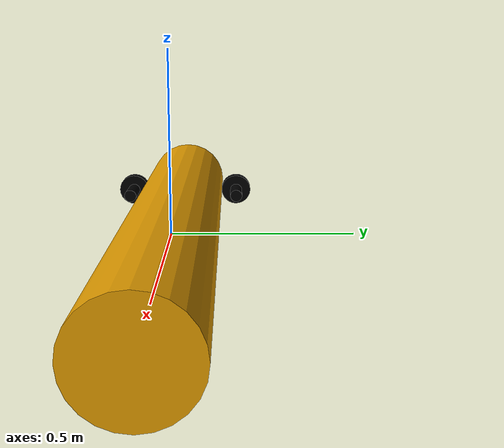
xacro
<?xml version="1.0"?>

<!-- STL-version of the URDF, used with gazebo for dynamic simulation  -->

<robot name="ecn_auv" xmlns:xacro="http://www.ros.org/wiki/xacro">

    <xacro:property name="PI" value="3.1415926535897931"/>

    <!-- Body properties -->
    <xacro:property name="body_mass" value="25"/>
    <xacro:property name="body_radius" value="0.13"/>
    <xacro:property name="body_length" value="1.5" />
    <xacro:property name="X_cog" value="${-0.5*body_radius}" />

    <!-- thrusters -->
    <xacro:property name="tr1" value=".02" />
    <xacro:property name="tl1" value=".1" />
    <xacro:property name="tr2" value=".05" />
    <xacro:property name="tl2" value=".03" />

    <xacro:property name="eps" value="0.00000001"/>

    <!-- Thruster link -->
    <xacro:macro name="thruster_link" params="name xyz rpy">

        <joint name="${name}" type="fixed">
            <parent link="base_link"/>
            <child link="${name}"/>
            <origin rpy="${rpy}" xyz="${xyz}"/>
            <dynamics damping="10.0"/>
            <axis xyz="0 1 0"/>
            <limit effort="30" velocity="5.0" lower="-${PI/2}" upper="${PI/2}" />
        </joint>

        <link name="${name}">
            <buoyancy><compensation>1.0</compensation></buoyancy>
            <visual name="${name}_1">
                <geometry>
                    <cylinder length="${tl1}" radius="${tr1}"/>
                </geometry>
                <material name="black">
                    <color rgba="0 0 0 1"/>
                </material>
            </visual>
            <visual name="${name}_2">
                <origin xyz="0 0 -${(tl1+tl2)/2}"/>
                <geometry>
                    <cylinder length="${tl2}" radius="${tr2}"/>
                </geometry>
                <material name="black">
                    <color rgba="0 0 0 1"/>
                </material>

            </visual>
            <inertial>
                <mass value=".1"/>
                <inertia
                    ixx=".1"
                    ixy="0.0"
                    ixz="0.0"
                    iyy=".1"
                    iyz="0.0"
                    izz=".1"/>
                </inertial>
            </link>

            <gazebo reference="${name}">
                <material>Gazebo/Black</material>
            </gazebo>
        </xacro:macro>

        <!-- Plugin list -->
        <gazebo>
            <!-- Gazebo plugin listens to the body-->
            <plugin name="freefloating_gazebo_control" filename="libfreefloating_gazebo_control.so">
                <switchService>switch</switchService>
                <updateRate>100</updateRate>
                <link>base_link</link>
                <!-- for each thruster, give the map to XYZ+RPY and the maximum effort -->
                <thruster>
                    <map>-1 0 0 0 0 ${body_length/3}</map>
                    <effort>30</effort>
                </thruster>
                <thruster>
                    <map>-1 0 0 0 0 ${-body_length/3}</map>
                    <effort>30</effort>
                </thruster>
                <thruster>
                    <map>0 1 0 0 0 0</map>
                    <effort>30</effort>
                </thruster>
                <thruster>
                    <map>0 0 -1 0 ${-0.3*body_length} 0</map>
                    <effort>30</effort>
                </thruster>
                <thruster>
                    <map>0 0 -1 0 ${0.3*body_length} 0</map>
                    <effort>30</effort>
                </thruster>
            </plugin>
        </gazebo>

        <link name="base_link">
            <visual>
                <origin rpy="0 ${-PI/2} 0"/>
                <geometry>
                    <cylinder length="${body_length}" radius="${body_radius}"/>
                </geometry>
            </visual>
            <inertial>
                <origin xyz="0 0 ${X_cog}" rpy="0 ${-PI/2} 0"/>
                <mass value="${body_mass}"/>
                <inertia
                    ixx="${body_mass*(body_radius*body_radius/4+body_length*body_length/12)}"
                    ixy="0.0"
                    ixz="0.0"
                    iyy="${body_mass*(body_radius*body_radius/4+body_length*body_length/12)}"
                    iyz="0.0"
                    izz="${body_mass*body_radius*body_radius/2}"/>
                </inertial>

                <buoyancy>
                    <compensation>1.01</compensation>
                    <origin xyz= "0 0 0"/>
                    <limit radius="${body_radius}"/>
                    <damping xyz="60 100 100" rpy="20 50 50"/>
                </buoyancy>
    </link>

    <!-- example of laser sensor and plugin, publishing to the "sonar" topic -->

    <gazebo reference="base_link">
    <sensor name="sonar" type="ray">
        <visualize>false</visualize>
        <pose>${body_length/3} 0 0 0 0.785398 0</pose>
        <update_rate>10</update_rate>
        <ray>
        <scan>
            <horizontal>
            <samples>60</samples>
            <resolution>1</resolution>
            <min_angle>-0.5</min_angle>
            <max_angle>0.5</max_angle>
            </horizontal>
	    <vertical>
            	<samples>110</samples>
                <resolution>1.0</resolution>
                <min_angle>-0.5</min_angle>
                <max_angle>0.5</max_angle>
            </vertical>
            </scan>
        <range>
            <min>.2</min>
            <max>100</max>
            <resolution>0.0005</resolution>
        </range>
        </ray>
        <plugin name="sonar_controller" filename="libgazebo_ros_block_laser.so">
        <topicName>sonar</topicName>
        <frameName>base_link</frameName>
        </plugin>
    </sensor>
</gazebo>

    <xacro:thruster_link name="fwd_left" xyz="${-body_length/3} ${body_radius+tr2} 0" rpy="0 ${PI/2} 0"/>
    <xacro:thruster_link name="fwd_right" xyz="${-body_length/3} -${body_radius+tr2} 0" rpy="0 ${PI/2} 0"/>

        </robot>
